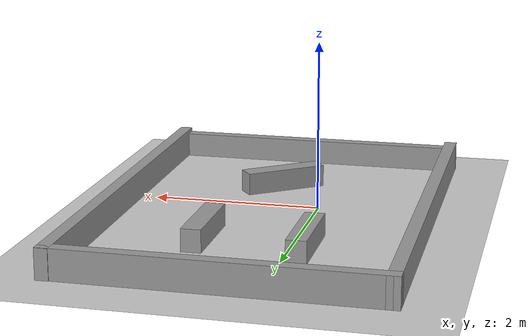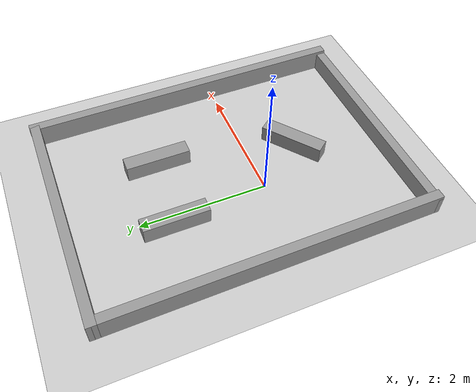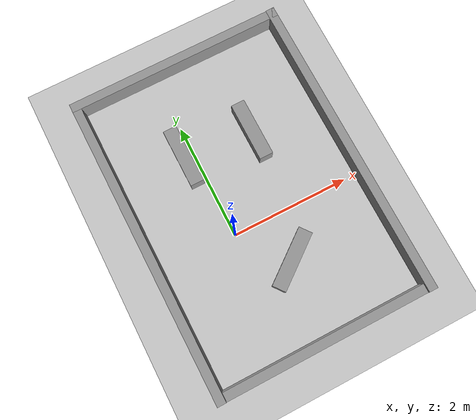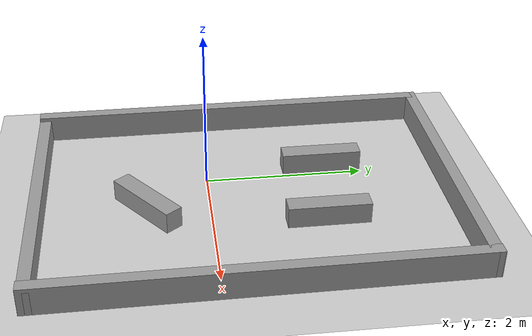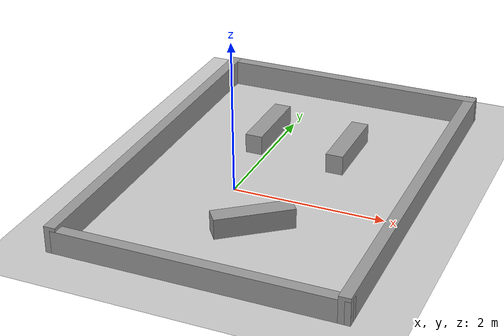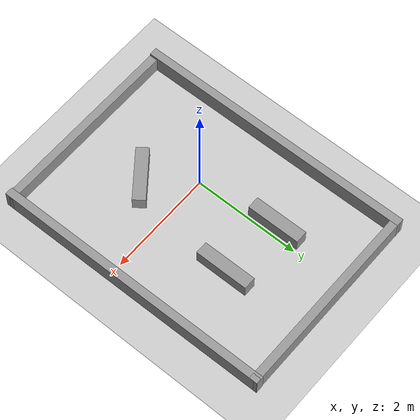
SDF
<sdf version="1.7">
 <world name="default">
  <light name="sun" type="directional">
   <pose>0 0 10 0 -0 0</pose>
   <diffuse>0.8 0.8 0.8 1</diffuse>
   <specular>0.2 0.2 0.2 1</specular>
   <attenuation>
    <range>1000</range>
    <constant>0.9</constant>
    <linear>0.01</linear>
    <quadratic>0.001</quadratic>
   </attenuation>
   <direction>-0.5 0.1 -0.9</direction>
   <spot><inner_angle>0</inner_angle><outer_angle>0</outer_angle><falloff>0</falloff></spot>
  </light>
  <model name="ground_plane">
   <static>1</static>
   <link name="link">
    <collision name="collision">
     <geometry><plane><normal>0 0 1</normal><size>100 100</size></plane></geometry>
     <surface><friction><ode><mu>100</mu><mu2>50</mu2></ode></friction></surface>
    </collision>
    <visual name="visual">
     <cast_shadows>0</cast_shadows>
     <geometry><plane><normal>0 0 1</normal><size>100 100</size></plane></geometry>
     <material>
      <script><uri>file://media/materials/scripts/gazebo.material</uri><name>Gazebo/Grey</name></script>
     </material>
    </visual>
   </link>
  </model>
  <gravity>0 0 -9.8</gravity>
  <magnetic_field>6e-06 2.3e-05 -4.2e-05</magnetic_field>
  <atmosphere type="adiabatic"/>
  <physics type="ode">
   <max_step_size>0.001</max_step_size>
   <real_time_factor>1</real_time_factor>
   <real_time_update_rate>1000</real_time_update_rate>
  </physics>
  <scene><ambient>0.4 0.4 0.4 1</ambient><background>0.7 0.7 0.7 1</background><shadows>1</shadows></scene>
  <audio><device>default</device></audio>
  <spherical_coordinates>
   <surface_model>EARTH_WGS84</surface_model>
   <latitude_deg>0</latitude_deg>
   <longitude_deg>0</longitude_deg>
   <elevation>0</elevation>
   <heading_deg>0</heading_deg>
  </spherical_coordinates>
  <model name="rectangle_layout">
   <pose>0.453688 0.463033 0 0 -0 0</pose>
   <link name="Wall_0">
    <collision name="Wall_0_Collision">
     <geometry><box><size>3.75 0.15 0.3</size></box></geometry>
     <pose>0 0 0.15 0 -0 0</pose>
    </collision>
    <visual name="Wall_0_Visual">
     <pose>0 0 0.15 0 -0 0</pose>
     <geometry><box><size>3.75 0.15 0.3</size></box></geometry>
     <material>
      <script><uri>file://media/materials/scripts/gazebo.material</uri><name>Gazebo/Grey</name></script>
      <ambient>1 1 1 1</ambient>
     </material>
     <meta><layer>0</layer></meta>
    </visual>
    <pose>0.018414 -2.55654 0 0 -0 0</pose>
   </link>
   <link name="Wall_2">
    <collision name="Wall_2_Collision">
     <geometry><box><size>5.26322 0.15 0.35</size></box></geometry>
     <pose>0 0 0.175 0 -0 0</pose>
    </collision>
    <visual name="Wall_2_Visual">
     <pose>0 0 0.175 0 -0 0</pose>
     <geometry><box><size>5.26322 0.15 0.35</size></box></geometry>
     <material>
      <script><uri>file://media/materials/scripts/gazebo.material</uri><name>Gazebo/Grey</name></script>
      <ambient>1 1 1 1</ambient>
     </material>
     <meta><layer>0</layer></meta>
    </visual>
    <pose>1.8 0 0 0 -0 1.578</pose>
   </link>
   <link name="Wall_4">
    <collision name="Wall_4_Collision">
     <geometry><box><size>3.75 0.15 0.35</size></box></geometry>
     <pose>0 0 0.175 0 -0 0</pose>
    </collision>
    <visual name="Wall_4_Visual">
     <pose>0 0 0.175 0 -0 0</pose>
     <geometry><box><size>3.75 0.15 0.35</size></box></geometry>
     <material>
      <script><uri>file://media/materials/scripts/gazebo.material</uri><name>Gazebo/Grey</name></script>
      <ambient>1 1 1 1</ambient>
     </material>
     <meta><layer>0</layer></meta>
    </visual>
    <pose>-0.018413 2.54785 0 0 -0 3.14159</pose>
   </link>
   <link name="Wall_5">
    <collision name="Wall_5_Collision">
     <geometry><box><size>5.25452 0.15 0.35</size></box></geometry>
     <pose>0 0 0.175 0 -0 0</pose>
    </collision>
    <visual name="Wall_5_Visual">
     <pose>0 0 0.175 0 -0 0</pose>
     <geometry><box><size>5.25452 0.15 0.35</size></box></geometry>
     <material>
      <script><uri>file://media/materials/scripts/gazebo.material</uri><name>Gazebo/Grey</name></script>
      <ambient>1 1 1 1</ambient>
     </material>
     <meta><layer>0</layer></meta>
    </visual>
    <pose>-1.8 -0.004348 0 0 -0 -1.56358</pose>
   </link>
   <static>1</static>
  </model>
  <model name="shelves">
   <link name="link">
    <inertial>
     <mass>1</mass>
     <inertia>
      <ixx>0.166667</ixx>
      <ixy>0</ixy>
      <ixz>0</ixz>
      <iyy>0.166667</iyy>
      <iyz>0</iyz>
      <izz>0.166667</izz>
     </inertia>
    </inertial>
    <pose>0 0 -0.27 0 -0 0</pose>
    <visual name="visual">
     <geometry><box><size>0.2323 1.01 0.265</size></box></geometry>
     <material>
      <script><name>Gazebo/Grey</name><uri>file://media/materials/scripts/gazebo.material</uri></script>
      <shader type="pixel"><normal_map>__default__</normal_map></shader>
      <ambient>1 1 1 1</ambient>
      <diffuse>1 1 1 1</diffuse>
      <specular>0.01 0.01 0.01 1</specular>
      <emissive>0 0 0 1</emissive>
     </material>
    </visual>
    <collision name="collision">
     <geometry><box><size>0.2323 1.01 0.26</size></box></geometry>
     <surface>
      <friction>
       <ode><mu>1</mu><mu2>1</mu2><fdir1>0 0 0</fdir1><slip1>0</slip1><slip2>0</slip2></ode>
       <torsional>
        <coefficient>1</coefficient>
        <patch_radius>0</patch_radius>
        <surface_radius>0</surface_radius>
        <use_patch_radius>1</use_patch_radius>
        <ode><slip>0</slip></ode>
       </torsional>
      </friction>
      <bounce><restitution_coefficient>0</restitution_coefficient><threshold>1e+06</threshold></bounce>
      <contact>
       <collide_without_contact>0</collide_without_contact>
       <collide_without_contact_bitmask>1</collide_without_contact_bitmask>
       <collide_bitmask>1</collide_bitmask>
       <ode>
        <soft_cfm>0</soft_cfm>
        <soft_erp>0.2</soft_erp>
        <kp>1e+13</kp>
        <kd>1</kd>
        <max_vel>0.01</max_vel>
        <min_depth>0</min_depth>
       </ode>
       <bullet>
        <split_impulse>1</split_impulse>
        <split_impulse_penetration_threshold>-0.01</split_impulse_penetration_threshold>
        <soft_cfm>0</soft_cfm>
        <soft_erp>0.2</soft_erp>
        <kp>1e+13</kp>
        <kd>1</kd>
       </bullet>
      </contact>
     </surface>
    </collision>
   </link>
   <static>0</static>
   <pose>-0.168812 1.50017 0.4 0 -0 0.004048</pose>
  </model>
  <model name="shelves_clone">
   <link name="link">
    <inertial>
     <mass>1</mass>
     <inertia>
      <ixx>0.166667</ixx>
      <ixy>0</ixy>
      <ixz>0</ixz>
      <iyy>0.166667</iyy>
      <iyz>0</iyz>
      <izz>0.166667</izz>
     </inertia>
    </inertial>
    <pose>0 0 -0.27 0 -0 0</pose>
    <visual name="visual">
     <geometry><box><size>0.2323 1.01 0.265</size></box></geometry>
     <material>
      <script><name>Gazebo/Grey</name><uri>file://media/materials/scripts/gazebo.material</uri></script>
      <shader type="pixel"><normal_map>__default__</normal_map></shader>
      <ambient>1 1 1 1</ambient>
      <diffuse>1 1 1 1</diffuse>
      <specular>0.01 0.01 0.01 1</specular>
      <emissive>0 0 0 1</emissive>
     </material>
    </visual>
    <collision name="collision">
     <geometry><box><size>0.2323 1.01 0.26</size></box></geometry>
     <surface>
      <friction>
       <ode><mu>1</mu><mu2>1</mu2><fdir1>0 0 0</fdir1><slip1>0</slip1><slip2>0</slip2></ode>
       <torsional>
        <coefficient>1</coefficient>
        <patch_radius>0</patch_radius>
        <surface_radius>0</surface_radius>
        <use_patch_radius>1</use_patch_radius>
        <ode><slip>0</slip></ode>
       </torsional>
      </friction>
      <bounce><restitution_coefficient>0</restitution_coefficient><threshold>1e+06</threshold></bounce>
      <contact>
       <collide_without_contact>0</collide_without_contact>
       <collide_without_contact_bitmask>1</collide_without_contact_bitmask>
       <collide_bitmask>1</collide_bitmask>
       <ode>
        <soft_cfm>0</soft_cfm>
        <soft_erp>0.2</soft_erp>
        <kp>1e+13</kp>
        <kd>1</kd>
        <max_vel>0.01</max_vel>
        <min_depth>0</min_depth>
       </ode>
       <bullet>
        <split_impulse>1</split_impulse>
        <split_impulse_penetration_threshold>-0.01</split_impulse_penetration_threshold>
        <soft_cfm>0</soft_cfm>
        <soft_erp>0.2</soft_erp>
        <kp>1e+13</kp>
        <kd>1</kd>
       </bullet>
      </contact>
     </surface>
    </collision>
   </link>
   <static>0</static>
   <pose>1.01429 1.38823 0.4 0 -0 0.004031</pose>
  </model>
  <model name="shelves_clone_0">
   <link name="link">
    <inertial>
     <mass>1</mass>
     <inertia>
      <ixx>0.166667</ixx>
      <ixy>0</ixy>
      <ixz>0</ixz>
      <iyy>0.166667</iyy>
      <iyz>0</iyz>
      <izz>0.166667</izz>
     </inertia>
    </inertial>
    <pose>0 0 -0.27 0 -0 0</pose>
    <visual name="visual">
     <geometry><box><size>0.2323 1.01 0.265</size></box></geometry>
     <material>
      <script><name>Gazebo/Grey</name><uri>file://media/materials/scripts/gazebo.material</uri></script>
      <shader type="pixel"><normal_map>__default__</normal_map></shader>
      <ambient>1 1 1 1</ambient>
      <diffuse>1 1 1 1</diffuse>
      <specular>0.01 0.01 0.01 1</specular>
      <emissive>0 0 0 1</emissive>
     </material>
    </visual>
    <collision name="collision">
     <geometry><box><size>0.2323 1.01 0.26</size></box></geometry>
     <surface>
      <friction>
       <ode><mu>1</mu><mu2>1</mu2><fdir1>0 0 0</fdir1><slip1>0</slip1><slip2>0</slip2></ode>
       <torsional>
        <coefficient>1</coefficient>
        <patch_radius>0</patch_radius>
        <surface_radius>0</surface_radius>
        <use_patch_radius>1</use_patch_radius>
        <ode><slip>0</slip></ode>
       </torsional>
      </friction>
      <bounce><restitution_coefficient>0</restitution_coefficient><threshold>1e+06</threshold></bounce>
      <contact>
       <collide_without_contact>0</collide_without_contact>
       <collide_without_contact_bitmask>1</collide_without_contact_bitmask>
       <collide_bitmask>1</collide_bitmask>
       <ode>
        <soft_cfm>0</soft_cfm>
        <soft_erp>0.2</soft_erp>
        <kp>1e+13</kp>
        <kd>1</kd>
        <max_vel>0.01</max_vel>
        <min_depth>0</min_depth>
       </ode>
       <bullet>
        <split_impulse>1</split_impulse>
        <split_impulse_penetration_threshold>-0.01</split_impulse_penetration_threshold>
        <soft_cfm>0</soft_cfm>
        <soft_erp>0.2</soft_erp>
        <kp>1e+13</kp>
        <kd>1</kd>
       </bullet>
      </contact>
     </surface>
    </collision>
   </link>
   <static>0</static>
   <pose>0.602956 -0.768406 0.4 0 0 -0.91426</pose>
  </model>
 </world>
</sdf>
